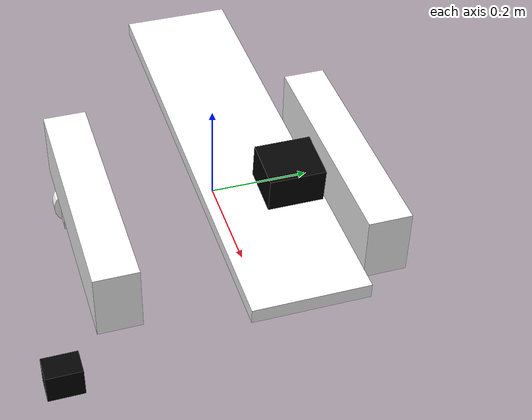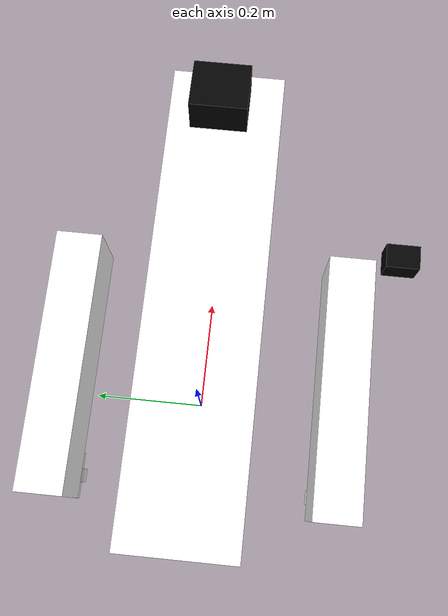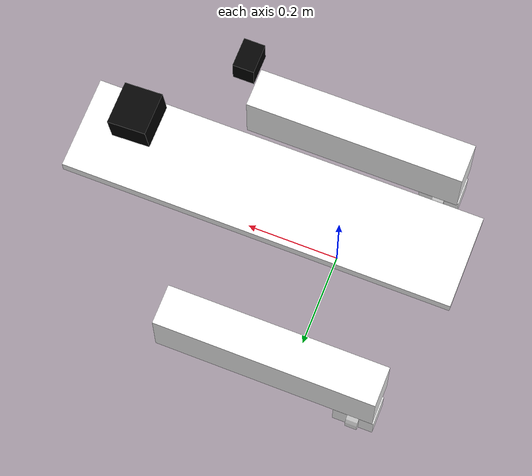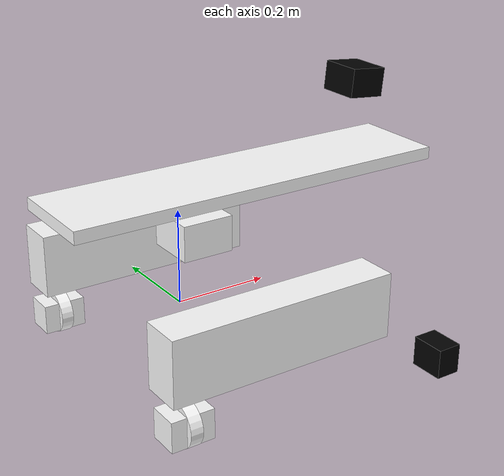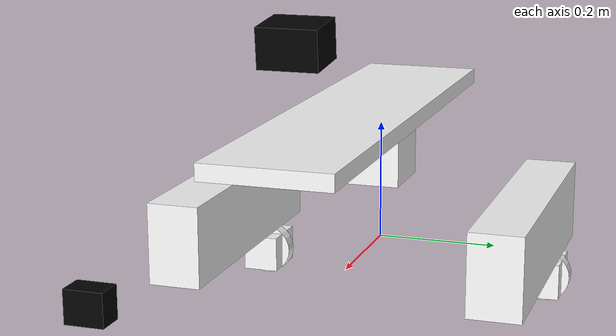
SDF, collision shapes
<?xml version="1.0"?>
<sdf version="1.9">
  <model name="asv_kki_2026">
    <!-- Pose-driven marine model. Keep it static in Gazebo physics so the
         hull cannot fall through the visual wave mesh; planar_pose_controller
         owns the ASV motion on the water surface. -->
    <static>true</static>
    <enable_wind>false</enable_wind>

    <link name="base_link">
      <gravity>false</gravity>
      <kinematic>true</kinematic>
      <pose>0 0 0 0 0 0</pose>
      <visual name="vrx_roboboat02_hull_visual">
        <geometry>
          <mesh>
            <uri>file:///home/ammar/Documents/asv_simulation/vrx/vrx_gz/models/roboboat02/meshes/roboboat02.dae</uri>
            <scale>0.60 0.60 0.60</scale>
          </mesh>
        </geometry>
        <material>
          <diffuse>1.0 1.0 1.0 1</diffuse>
          <specular>0.8 0.8 0.8 1</specular>
          <pbr>
            <metal>
              <albedo_map>file:///home/ammar/Documents/asv_simulation/vrx/vrx_gz/models/roboboat02/materials/textures/Boat02_Albedo.png</albedo_map>
              <normal_map>file:///home/ammar/Documents/asv_simulation/vrx/vrx_gz/models/roboboat02/materials/textures/Boat02_Normal.png</normal_map>
              <roughness_map>file:///home/ammar/Documents/asv_simulation/vrx/vrx_gz/models/roboboat02/materials/textures/Boat02_Roughness.png</roughness_map>
              <metalness_map>file:///home/ammar/Documents/asv_simulation/vrx/vrx_gz/models/roboboat02/materials/textures/Boat02_Metallic.png</metalness_map>
            </metal>
          </pbr>
          <double_sided>true</double_sided>
        </material>
      </visual>
      <visual name="vrx_drybox_visual">
        <pose>0.000 0.000 0.210 0 0 0</pose>
        <geometry>
          <mesh>
            <uri>file:///home/ammar/Documents/asv_simulation/vrx/vrx_gz/models/roboboat_cpubox/meshes/drybox.dae</uri>
            <scale>0.60 0.60 0.60</scale>
          </mesh>
        </geometry>
        <material>
          <diffuse>1.0 1.0 1.0 1</diffuse>
          <specular>0.6 0.6 0.6 1</specular>
          <pbr>
            <metal>
              <albedo_map>file:///home/ammar/Documents/asv_simulation/vrx/vrx_gz/models/roboboat_cpubox/materials/textures/DryBox_Albedo.png</albedo_map>
              <roughness_map>file:///home/ammar/Documents/asv_simulation/vrx/vrx_gz/models/roboboat_cpubox/materials/textures/DryBox_Roughness.png</roughness_map>
            </metal>
          </pbr>
        </material>
      </visual>
      <visual name="left_thruster_bracket_visual">
        <pose>-0.150 0.264 -0.042 0 0 0</pose>
        <geometry>
          <box>
            <size>0.035 0.032 0.120</size>
          </box>
        </geometry>
        <material>
          <ambient>0.015 0.015 0.015 1</ambient>
          <diffuse>0.015 0.015 0.015 1</diffuse>
        </material>
      </visual>
      <visual name="right_thruster_bracket_visual">
        <pose>-0.150 -0.264 -0.042 0 0 0</pose>
        <geometry>
          <box>
            <size>0.035 0.032 0.120</size>
          </box>
        </geometry>
        <material>
          <ambient>0.015 0.015 0.015 1</ambient>
          <diffuse>0.015 0.015 0.015 1</diffuse>
        </material>
      </visual>
      <visual name="left_thruster_servo_case_visual">
        <pose>-0.150 0.264 -0.024 0 0 0</pose>
        <geometry>
          <box>
            <size>0.078 0.058 0.038</size>
          </box>
        </geometry>
        <material>
          <ambient>0.18 0.18 0.17 1</ambient>
          <diffuse>0.18 0.18 0.17 1</diffuse>
          <specular>0.28 0.28 0.25 1</specular>
        </material>
      </visual>
      <visual name="left_thruster_servo_shaft_visual">
        <pose>-0.150 0.264 -0.057 0 0 0</pose>
        <geometry>
          <cylinder>
            <radius>0.010</radius>
            <length>0.090</length>
          </cylinder>
        </geometry>
        <material>
          <ambient>0.02 0.02 0.02 1</ambient>
          <diffuse>0.02 0.02 0.02 1</diffuse>
        </material>
      </visual>
      <visual name="right_thruster_servo_case_visual">
        <pose>-0.150 -0.264 -0.024 0 0 0</pose>
        <geometry>
          <box>
            <size>0.078 0.058 0.038</size>
          </box>
        </geometry>
        <material>
          <ambient>0.18 0.18 0.17 1</ambient>
          <diffuse>0.18 0.18 0.17 1</diffuse>
          <specular>0.28 0.28 0.25 1</specular>
        </material>
      </visual>
      <visual name="right_thruster_servo_shaft_visual">
        <pose>-0.150 -0.264 -0.057 0 0 0</pose>
        <geometry>
          <cylinder>
            <radius>0.010</radius>
            <length>0.090</length>
          </cylinder>
        </geometry>
        <material>
          <ambient>0.02 0.02 0.02 1</ambient>
          <diffuse>0.02 0.02 0.02 1</diffuse>
        </material>
      </visual>
      <visual name="lidar_mount_base_visual">
        <pose>0.036 0 0.300 0 0 0</pose>
        <geometry>
          <box>
            <size>0.165 0.120 0.022</size>
          </box>
        </geometry>
        <material>
          <ambient>0.02 0.02 0.02 1</ambient>
          <diffuse>0.02 0.02 0.02 1</diffuse>
        </material>
      </visual>
      <visual name="lidar_support_post_visual">
        <pose>0.036 0 0.405 0 0 0</pose>
        <geometry>
          <cylinder>
            <radius>0.012</radius>
            <length>0.190</length>
          </cylinder>
        </geometry>
        <material>
          <ambient>0.02 0.02 0.02 1</ambient>
          <diffuse>0.02 0.02 0.02 1</diffuse>
        </material>
      </visual>
      <visual name="sensor_mast_top_bar_visual">
        <pose>0.036 0 0.505 0 0 0</pose>
        <geometry>
          <box>
            <size>0.140 0.026 0.018</size>
          </box>
        </geometry>
        <material>
          <ambient>0.02 0.02 0.02 1</ambient>
          <diffuse>0.02 0.02 0.02 1</diffuse>
        </material>
      </visual>
      <collision name="left_hull_collision">
        <pose>0.048 0.260 0.040 0 0 0</pose>
        <geometry>
          <box>
            <size>0.484 0.087 0.136</size>
          </box>
        </geometry>
      </collision>
      <collision name="right_hull_collision">
        <pose>0.048 -0.260 0.040 0 0 0</pose>
        <geometry>
          <box>
            <size>0.484 0.087 0.136</size>
          </box>
        </geometry>
      </collision>
      <collision name="deck_contact_collision">
        <pose>0.147 0 0.240 0 0 0</pose>
        <geometry>
          <box>
            <size>0.831 0.199 0.026</size>
          </box>
        </geometry>
      </collision>
      <inertial>
        <pose>0.120 0 -0.190 0 0 0</pose>
        <mass>7.2</mass>
        <inertia>
          <ixx>0.155</ixx>
          <ixy>0</ixy>
          <ixz>0</ixz>
          <iyy>0.460</iyy>
          <iyz>0</iyz>
          <izz>0.560</izz>
        </inertia>
      </inertial>
      <!-- Detect contacts on the main hull/deck collisions. This reports
           collision events without disabling the pose-based marine controller. -->
      <sensor name="hull_contact_sensor" type="contact">
        <contact>
          <collision>left_hull_collision</collision>
          <collision>right_hull_collision</collision>
          <collision>deck_contact_collision</collision>
          <topic>/asv/collisions/hull</topic>
        </contact>
        <always_on>true</always_on>
        <update_rate>30</update_rate>
      </sensor>
    </link>

    <link name="left_thruster_servo_link">
      <gravity>false</gravity>
      <kinematic>false</kinematic>
      <pose relative_to="left_thruster_steering_joint">0 0 0 0 0 0</pose>
      <visual name="left_thruster_housing_visual">
        <geometry>
          <mesh>
            <uri>file:///home/ammar/Documents/asv_simulation/vrx/vrx_gz/models/roboboat01/meshes/housing.dae</uri>
            <scale>0.60 0.60 0.60</scale>
          </mesh>
        </geometry>
        <material>
          <diffuse>1.0 1.0 1.0 1</diffuse>
          <specular>0.65 0.65 0.65 1</specular>
          <pbr>
            <metal>
              <albedo_map>file:///home/ammar/Documents/asv_simulation/vrx/vrx_gz/models/roboboat01/materials/textures/Thruster_Albedo.png</albedo_map>
              <roughness_map>file:///home/ammar/Documents/asv_simulation/vrx/vrx_gz/models/roboboat01/materials/textures/Thruster_Roughness.png</roughness_map>
            </metal>
          </pbr>
        </material>
      </visual>
      <visual name="left_thruster_mount_visual">
        <geometry>
          <mesh>
            <uri>file:///home/ammar/Documents/asv_simulation/vrx/vrx_gz/models/roboboat01/meshes/mount.dae</uri>
            <scale>0.60 0.60 0.60</scale>
          </mesh>
        </geometry>
        <material>
          <diffuse>1.0 1.0 1.0 1</diffuse>
          <specular>0.65 0.65 0.65 1</specular>
          <pbr>
            <metal>
              <albedo_map>file:///home/ammar/Documents/asv_simulation/vrx/vrx_gz/models/roboboat01/materials/textures/Thruster_Albedo.png</albedo_map>
              <roughness_map>file:///home/ammar/Documents/asv_simulation/vrx/vrx_gz/models/roboboat01/materials/textures/Thruster_Roughness.png</roughness_map>
            </metal>
          </pbr>
        </material>
      </visual>
      <visual name="left_thruster_shaft_visual">
        <pose>0.033 0 0 0 0 0</pose>
        <geometry>
          <box>
            <size>0.095 0.018 0.018</size>
          </box>
        </geometry>
        <material>
          <ambient>0.015 0.015 0.015 1</ambient>
          <diffuse>0.015 0.015 0.015 1</diffuse>
        </material>
      </visual>
      <visual name="left_servo_horn_visual">
        <pose>0 0 0.055 0 0 0</pose>
        <geometry>
          <cylinder>
            <radius>0.028</radius>
            <length>0.012</length>
          </cylinder>
        </geometry>
        <material>
          <ambient>0.06 0.06 0.055 1</ambient>
          <diffuse>0.06 0.06 0.055 1</diffuse>
          <specular>0.22 0.22 0.20 1</specular>
        </material>
      </visual>
      <visual name="left_steering_yoke_visual">
        <pose>0.005 0 0.037 0 0 0</pose>
        <geometry>
          <box>
            <size>0.050 0.090 0.012</size>
          </box>
        </geometry>
        <material>
          <ambient>0.04 0.04 0.038 1</ambient>
          <diffuse>0.04 0.04 0.038 1</diffuse>
        </material>
      </visual>
      <collision name="left_thruster_servo_collision">
        <geometry><box><size>0.090 0.063 0.063</size></box></geometry>
      </collision>
      <inertial>
        <mass>0.20</mass>
        <inertia>
          <ixx>0.00028</ixx>
          <ixy>0</ixy>
          <ixz>0</ixz>
          <iyy>0.00034</iyy>
          <iyz>0</iyz>
          <izz>0.00034</izz>
        </inertia>
      </inertial>
      <sensor name="left_thruster_contact_sensor" type="contact">
        <contact>
          <collision>left_thruster_servo_collision</collision>
          <topic>/asv/collisions/left_thruster</topic>
        </contact>
        <always_on>true</always_on>
        <update_rate>30</update_rate>
      </sensor>
    </link>
    <joint name="left_thruster_steering_joint" type="revolute">
      <pose relative_to="base_link">-0.150 0.264 -0.090 0 0 0</pose>
      <parent>base_link</parent>
      <child>left_thruster_servo_link</child>
      <axis>
        <xyz>0 0 1</xyz>
        <limit>
          <lower>-0.785398</lower>
          <upper>0.785398</upper>
          <effort>12</effort>
          <velocity>2.0</velocity>
        </limit>
        <dynamics>
          <damping>0.20</damping>
          <friction>0.02</friction>
        </dynamics>
      </axis>
    </joint>

    <link name="right_thruster_servo_link">
      <gravity>false</gravity>
      <kinematic>false</kinematic>
      <pose relative_to="right_thruster_steering_joint">0 0 0 0 0 0</pose>
      <visual name="right_thruster_housing_visual">
        <geometry>
          <mesh>
            <uri>file:///home/ammar/Documents/asv_simulation/vrx/vrx_gz/models/roboboat01/meshes/housing.dae</uri>
            <scale>0.60 0.60 0.60</scale>
          </mesh>
        </geometry>
        <material>
          <diffuse>1.0 1.0 1.0 1</diffuse>
          <specular>0.65 0.65 0.65 1</specular>
          <pbr>
            <metal>
              <albedo_map>file:///home/ammar/Documents/asv_simulation/vrx/vrx_gz/models/roboboat01/materials/textures/Thruster_Albedo.png</albedo_map>
              <roughness_map>file:///home/ammar/Documents/asv_simulation/vrx/vrx_gz/models/roboboat01/materials/textures/Thruster_Roughness.png</roughness_map>
            </metal>
          </pbr>
        </material>
      </visual>
      <visual name="right_thruster_mount_visual">
        <geometry>
          <mesh>
            <uri>file:///home/ammar/Documents/asv_simulation/vrx/vrx_gz/models/roboboat01/meshes/mount.dae</uri>
            <scale>0.60 0.60 0.60</scale>
          </mesh>
        </geometry>
        <material>
          <diffuse>1.0 1.0 1.0 1</diffuse>
          <specular>0.65 0.65 0.65 1</specular>
          <pbr>
            <metal>
              <albedo_map>file:///home/ammar/Documents/asv_simulation/vrx/vrx_gz/models/roboboat01/materials/textures/Thruster_Albedo.png</albedo_map>
              <roughness_map>file:///home/ammar/Documents/asv_simulation/vrx/vrx_gz/models/roboboat01/materials/textures/Thruster_Roughness.png</roughness_map>
            </metal>
          </pbr>
        </material>
      </visual>
      <visual name="right_thruster_shaft_visual">
        <pose>0.033 0 0 0 0 0</pose>
        <geometry>
          <box>
            <size>0.095 0.018 0.018</size>
          </box>
        </geometry>
        <material>
          <ambient>0.015 0.015 0.015 1</ambient>
          <diffuse>0.015 0.015 0.015 1</diffuse>
        </material>
      </visual>
      <visual name="right_servo_horn_visual">
        <pose>0 0 0.055 0 0 0</pose>
        <geometry>
          <cylinder>
            <radius>0.028</radius>
            <length>0.012</length>
          </cylinder>
        </geometry>
        <material>
          <ambient>0.06 0.06 0.055 1</ambient>
          <diffuse>0.06 0.06 0.055 1</diffuse>
          <specular>0.22 0.22 0.20 1</specular>
        </material>
      </visual>
      <visual name="right_steering_yoke_visual">
        <pose>0.005 0 0.037 0 0 0</pose>
        <geometry>
          <box>
            <size>0.050 0.090 0.012</size>
          </box>
        </geometry>
        <material>
          <ambient>0.04 0.04 0.038 1</ambient>
          <diffuse>0.04 0.04 0.038 1</diffuse>
        </material>
      </visual>
      <collision name="right_thruster_servo_collision">
        <geometry><box><size>0.090 0.063 0.063</size></box></geometry>
      </collision>
      <inertial>
        <mass>0.20</mass>
        <inertia>
          <ixx>0.00028</ixx>
          <ixy>0</ixy>
          <ixz>0</ixz>
          <iyy>0.00034</iyy>
          <iyz>0</iyz>
          <izz>0.00034</izz>
        </inertia>
      </inertial>
      <sensor name="right_thruster_contact_sensor" type="contact">
        <contact>
          <collision>right_thruster_servo_collision</collision>
          <topic>/asv/collisions/right_thruster</topic>
        </contact>
        <always_on>true</always_on>
        <update_rate>30</update_rate>
      </sensor>
    </link>
    <joint name="right_thruster_steering_joint" type="revolute">
      <pose relative_to="base_link">-0.150 -0.264 -0.090 0 0 0</pose>
      <parent>base_link</parent>
      <child>right_thruster_servo_link</child>
      <axis>
        <xyz>0 0 1</xyz>
        <limit>
          <lower>-0.785398</lower>
          <upper>0.785398</upper>
          <effort>12</effort>
          <velocity>2.0</velocity>
        </limit>
        <dynamics>
          <damping>0.20</damping>
          <friction>0.02</friction>
        </dynamics>
      </axis>
    </joint>

    <link name="left_propeller_link">
      <gravity>false</gravity>
      <kinematic>false</kinematic>
      <pose relative_to="left_propeller_joint">0 0 0 0 0 0</pose>
      <visual name="left_propeller_mesh_visual">
        <pose>0 0 0 0 0 0</pose>
        <geometry>
          <mesh>
            <uri>file:///home/ammar/Documents/asv_simulation/vrx/vrx_gz/models/roboboat01/meshes/prop.dae</uri>
            <scale>0.60 0.60 0.60</scale>
          </mesh>
        </geometry>
        <material>
          <diffuse>1.0 1.0 1.0 1</diffuse>
          <specular>0.65 0.65 0.65 1</specular>
          <pbr>
            <metal>
              <albedo_map>file:///home/ammar/Documents/asv_simulation/vrx/vrx_gz/models/roboboat01/materials/textures/Thruster_Albedo.png</albedo_map>
              <roughness_map>file:///home/ammar/Documents/asv_simulation/vrx/vrx_gz/models/roboboat01/materials/textures/Thruster_Roughness.png</roughness_map>
            </metal>
          </pbr>
        </material>
      </visual>
      <collision name="left_propeller_collision">
        <pose>0 0 0 0 1.570796 0</pose>
        <geometry><cylinder><radius>0.045</radius><length>0.026</length></cylinder></geometry>
      </collision>
      <inertial>
        <mass>0.05</mass>
        <inertia>
          <ixx>0.000035</ixx>
          <ixy>0</ixy>
          <ixz>0</ixz>
          <iyy>0.000035</iyy>
          <iyz>0</iyz>
          <izz>0.000060</izz>
        </inertia>
      </inertial>
      <sensor name="left_propeller_contact_sensor" type="contact">
        <contact>
          <collision>left_propeller_collision</collision>
          <topic>/asv/collisions/left_propeller</topic>
        </contact>
        <always_on>true</always_on>
        <update_rate>30</update_rate>
      </sensor>
    </link>
    <joint name="left_propeller_joint" type="revolute">
      <pose relative_to="left_thruster_servo_link">0 0 0 0 0 0</pose>
      <parent>left_thruster_servo_link</parent>
      <child>left_propeller_link</child>
      <axis>
        <xyz>1 0 0</xyz>
        <limit>
          <effort>40.0</effort>
          <velocity>300.0</velocity>
        </limit>
        <dynamics>
          <damping>0.05</damping>
          <friction>0.01</friction>
        </dynamics>
      </axis>
    </joint>

    <link name="right_propeller_link">
      <gravity>false</gravity>
      <kinematic>false</kinematic>
      <pose relative_to="right_propeller_joint">0 0 0 0 0 0</pose>
      <visual name="right_propeller_mesh_visual">
        <pose>0 0 0 0 0 0</pose>
        <geometry>
          <mesh>
            <uri>file:///home/ammar/Documents/asv_simulation/vrx/vrx_gz/models/roboboat01/meshes/prop.dae</uri>
            <scale>0.60 0.60 0.60</scale>
          </mesh>
        </geometry>
        <material>
          <diffuse>1.0 1.0 1.0 1</diffuse>
          <specular>0.65 0.65 0.65 1</specular>
          <pbr>
            <metal>
              <albedo_map>file:///home/ammar/Documents/asv_simulation/vrx/vrx_gz/models/roboboat01/materials/textures/Thruster_Albedo.png</albedo_map>
              <roughness_map>file:///home/ammar/Documents/asv_simulation/vrx/vrx_gz/models/roboboat01/materials/textures/Thruster_Roughness.png</roughness_map>
            </metal>
          </pbr>
        </material>
      </visual>
      <collision name="right_propeller_collision">
        <pose>0 0 0 0 1.570796 0</pose>
        <geometry><cylinder><radius>0.045</radius><length>0.026</length></cylinder></geometry>
      </collision>
      <inertial>
        <mass>0.05</mass>
        <inertia>
          <ixx>0.000035</ixx>
          <ixy>0</ixy>
          <ixz>0</ixz>
          <iyy>0.000035</iyy>
          <iyz>0</iyz>
          <izz>0.000060</izz>
        </inertia>
      </inertial>
      <sensor name="right_propeller_contact_sensor" type="contact">
        <contact>
          <collision>right_propeller_collision</collision>
          <topic>/asv/collisions/right_propeller</topic>
        </contact>
        <always_on>true</always_on>
        <update_rate>30</update_rate>
      </sensor>
    </link>
    <joint name="right_propeller_joint" type="revolute">
      <pose relative_to="right_thruster_servo_link">0 0 0 0 0 0</pose>
      <parent>right_thruster_servo_link</parent>
      <child>right_propeller_link</child>
      <axis>
        <xyz>1 0 0</xyz>
        <limit>
          <effort>40.0</effort>
          <velocity>300.0</velocity>
        </limit>
        <dynamics>
          <damping>0.05</damping>
          <friction>0.01</friction>
        </dynamics>
      </axis>
    </joint>

    <link name="imu_link">
      <gravity>false</gravity>
      <kinematic>false</kinematic>
      <pose relative_to="base_link">0.000 0 0.220 0 0 0</pose>
      <inertial>
        <mass>0.02</mass>
        <inertia>
          <ixx>0.000010</ixx>
          <ixy>0</ixy>
          <ixz>0</ixz>
          <iyy>0.000010</iyy>
          <iyz>0</iyz>
          <izz>0.000010</izz>
        </inertia>
      </inertial>
      <sensor name="imu_sensor" type="imu">
        <topic>/asv/imu/data</topic>
        <always_on>true</always_on>
        <update_rate>100</update_rate>
      </sensor>
    </link>
    <joint name="imu_joint" type="fixed">
      <parent>base_link</parent>
      <child>imu_link</child>
    </joint>

    <link name="gps_link">
      <gravity>false</gravity>
      <kinematic>false</kinematic>
      <pose relative_to="base_link">0.020 0 0.530 0 0 0</pose>
      <inertial>
        <mass>0.05</mass>
        <inertia>
          <ixx>0.000030</ixx>
          <ixy>0</ixy>
          <ixz>0</ixz>
          <iyy>0.000030</iyy>
          <iyz>0</iyz>
          <izz>0.000030</izz>
        </inertia>
      </inertial>
      <sensor name="gps_sensor" type="navsat">
        <topic>/asv/gps/fix</topic>
        <always_on>true</always_on>
        <update_rate>10</update_rate>
        <navsat>
          <position_sensing>
            <horizontal>
              <noise type="gaussian">
                <mean>0</mean>
                <stddev>0.05</stddev>
              </noise>
            </horizontal>
            <vertical>
              <noise type="gaussian">
                <mean>0</mean>
                <stddev>0.10</stddev>
              </noise>
            </vertical>
          </position_sensing>
        </navsat>
      </sensor>
    </link>
    <joint name="gps_joint" type="fixed">
      <parent>base_link</parent>
      <child>gps_link</child>
    </joint>

    <link name="lidar_link">
      <gravity>false</gravity>
      <kinematic>false</kinematic>
      <pose relative_to="base_link">0.036 0 0.150 0 0 0</pose>
      <inertial>
        <mass>0.12</mass>
        <inertia>
          <ixx>0.000150</ixx>
          <ixy>0</ixy>
          <ixz>0</ixz>
          <iyy>0.000150</iyy>
          <iyz>0</iyz>
          <izz>0.000180</izz>
        </inertia>
      </inertial>
      <visual name="vrx_3d_lidar_visual">
        <pose>0 0 -0.035 0 0 0</pose>
        <geometry>
          <mesh>
            <uri>file:///home/ammar/Documents/asv_simulation/asv_kki_2026_ws/src/asv_description/models/asv_kki_2026/meshes/vrx_3d_lidar/3d_lidar.dae</uri>
            <scale>0.60 0.60 0.60</scale>
          </mesh>
        </geometry>
        <material>
          <diffuse>1.0 1.0 1.0 1</diffuse>
          <specular>0.6 0.6 0.6 1</specular>
          <pbr>
            <metal>
              <albedo_map>file:///home/ammar/Documents/asv_simulation/asv_kki_2026_ws/src/asv_description/models/asv_kki_2026/meshes/vrx_3d_lidar/3d_Lidar_Albedo.png</albedo_map>
              <normal_map>file:///home/ammar/Documents/asv_simulation/asv_kki_2026_ws/src/asv_description/models/asv_kki_2026/meshes/vrx_3d_lidar/3d_Lidar_Normal.png</normal_map>
              <roughness_map>file:///home/ammar/Documents/asv_simulation/asv_kki_2026_ws/src/asv_description/models/asv_kki_2026/meshes/vrx_3d_lidar/3d_Lidar_Roughness.png</roughness_map>
              <metalness_map>file:///home/ammar/Documents/asv_simulation/asv_kki_2026_ws/src/asv_description/models/asv_kki_2026/meshes/vrx_3d_lidar/3d_Lidar_Metalness.png</metalness_map>
            </metal>
          </pbr>
        </material>
      </visual>
      <collision name="lidar_collision">
        <geometry>
          <box>
            <size>0.110 0.110 0.075</size>
          </box>
        </geometry>
      </collision>
      <sensor name="lidar_contact_sensor" type="contact">
        <contact>
          <collision>lidar_collision</collision>
          <topic>/asv/collisions/lidar</topic>
        </contact>
        <always_on>true</always_on>
        <update_rate>30</update_rate>
      </sensor>
      <sensor name="lidar_sensor" type="gpu_lidar">
        <topic>/asv/lidar/scan</topic>
        <always_on>true</always_on>
        <visualize>true</visualize>
        <update_rate>15</update_rate>
        <lidar>
          <scan>
            <horizontal>
              <samples>720</samples>
              <resolution>1</resolution>
              <min_angle>-3.14159</min_angle>
              <max_angle>3.14159</max_angle>
            </horizontal>
            <vertical>
              <samples>3</samples>
              <resolution>1</resolution>
              <min_angle>-0.035</min_angle>
              <max_angle>0.035</max_angle>
            </vertical>
          </scan>
          <range>
            <min>0.45</min>
            <max>6.0</max>
            <resolution>0.02</resolution>
          </range>
          <noise>
            <type>gaussian</type>
            <mean>0.0</mean>
            <stddev>0.015</stddev>
          </noise>
        </lidar>
      </sensor>
    </link>
    <joint name="lidar_joint" type="fixed">
      <parent>base_link</parent>
      <child>lidar_link</child>
    </joint>

    <link name="front_camera_link">
      <gravity>false</gravity>
      <kinematic>false</kinematic>
      <pose relative_to="base_link">0.430 0 0.400 0 0.100 0</pose>
      <inertial>
        <mass>0.08</mass>
        <inertia>
          <ixx>0.000060</ixx>
          <ixy>0</ixy>
          <ixz>0</ixz>
          <iyy>0.000050</iyy>
          <iyz>0</iyz>
          <izz>0.000080</izz>
        </inertia>
      </inertial>
      <visual name="front_camera_visual">
        <pose>0 0 0 0 0 0</pose>
        <geometry>
          <box>
            <size>0.064 0.085 0.052</size>
          </box>
        </geometry>
        <material>
          <ambient>0.01 0.01 0.01 1</ambient>
          <diffuse>0.01 0.01 0.01 1</diffuse>
        </material>
      </visual>
      <visual name="front_camera_lens_visual">
        <pose>0.040 0 0 0 1.570796 0</pose>
        <geometry>
          <cylinder>
            <radius>0.020</radius>
            <length>0.018</length>
          </cylinder>
        </geometry>
        <material>
          <ambient>0.04 0.05 0.06 1</ambient>
          <diffuse>0.04 0.05 0.06 1</diffuse>
          <specular>0.45 0.55 0.65 1</specular>
        </material>
      </visual>
      <collision name="front_camera_collision">
        <geometry><box><size>0.080 0.090 0.060</size></box></geometry>
      </collision>
      <sensor name="front_camera_contact_sensor" type="contact">
        <contact>
          <collision>front_camera_collision</collision>
          <topic>/asv/collisions/front_camera</topic>
        </contact>
        <always_on>true</always_on>
        <update_rate>30</update_rate>
      </sensor>
      <sensor name="front_camera_sensor" type="camera">
        <topic>/asv/camera/front/image</topic>
        <always_on>true</always_on>
        <update_rate>20</update_rate>
        <visualize>true</visualize>
        <camera>
          <horizontal_fov>1.3962634</horizontal_fov>
          <image>
            <width>1280</width>
            <height>720</height>
            <format>R8G8B8</format>
          </image>
          <clip>
            <near>0.05</near>
            <far>80.0</far>
          </clip>
        </camera>
      </sensor>
    </link>
    <joint name="front_camera_joint" type="fixed">
      <parent>base_link</parent>
      <child>front_camera_link</child>
    </joint>

    <link name="down_camera_link">
      <gravity>false</gravity>
      <kinematic>false</kinematic>
      <pose relative_to="base_link">0.350 -0.380 -0.050 0 1.570796 0</pose>
      <inertial>
        <mass>0.05</mass>
        <inertia>
          <ixx>0.000025</ixx>
          <ixy>0</ixy>
          <ixz>0</ixz>
          <iyy>0.000020</iyy>
          <iyz>0</iyz>
          <izz>0.000030</izz>
        </inertia>
      </inertial>
      <visual name="down_camera_visual">
        <pose>0 0 0 0 0 0</pose>
        <geometry>
          <box>
            <size>0.040 0.060 0.040</size>
          </box>
        </geometry>
        <material>
          <ambient>0.01 0.01 0.01 1</ambient>
          <diffuse>0.01 0.01 0.01 1</diffuse>
        </material>
      </visual>
      <visual name="down_camera_lens_visual">
        <pose>0.020 0 0 0 0 0</pose>
        <geometry>
          <cylinder>
            <radius>0.016</radius>
            <length>0.014</length>
          </cylinder>
        </geometry>
        <material>
          <ambient>0.04 0.05 0.06 1</ambient>
          <diffuse>0.04 0.05 0.06 1</diffuse>
          <specular>0.45 0.55 0.65 1</specular>
        </material>
      </visual>
      <collision name="down_camera_collision">
        <geometry><box><size>0.060 0.070 0.050</size></box></geometry>
      </collision>
      <sensor name="down_camera_contact_sensor" type="contact">
        <contact>
          <collision>down_camera_collision</collision>
          <topic>/asv/collisions/down_camera</topic>
        </contact>
        <always_on>true</always_on>
        <update_rate>30</update_rate>
      </sensor>
      <sensor name="down_camera_sensor" type="camera">
        <topic>/asv/camera/down/image</topic>
        <always_on>true</always_on>
        <update_rate>10</update_rate>
        <camera>
          <horizontal_fov>1.85</horizontal_fov>
          <image>
            <width>640</width>
            <height>480</height>
            <format>R8G8B8</format>
          </image>
          <clip>
            <near>0.05</near>
            <far>10.0</far>
          </clip>
        </camera>
      </sensor>
    </link>
    <joint name="down_camera_joint" type="fixed">
      <parent>base_link</parent>
      <child>down_camera_link</child>
    </joint>

    <plugin filename="gz-sim-joint-state-publisher-system"
            name="gz::sim::systems::JointStatePublisher"/>

    <plugin filename="gz-sim-odometry-publisher-system"
            name="gz::sim::systems::OdometryPublisher">
      <odom_frame>odom</odom_frame>
      <robot_base_frame>base_link</robot_base_frame>
      <odom_publish_frequency>50</odom_publish_frequency>
      <odom_topic>/asv/odom</odom_topic>
      <dimensions>3</dimensions>
    </plugin>

    <plugin filename="gz-sim-pose-publisher-system"
            name="gz::sim::systems::PosePublisher">
      <publish_link_pose>true</publish_link_pose>
      <use_pose_vector_msg>true</use_pose_vector_msg>
      <static_publisher>true</static_publisher>
      <static_update_frequency>1</static_update_frequency>
    </plugin>

    <plugin filename="gz-sim-joint-controller-system"
            name="gz::sim::systems::JointController">
      <joint_name>left_propeller_joint</joint_name>
      <initial_velocity>0.0</initial_velocity>
      <p_gain>0.20</p_gain>
    </plugin>

    <plugin filename="gz-sim-joint-controller-system"
            name="gz::sim::systems::JointController">
      <joint_name>right_propeller_joint</joint_name>
      <initial_velocity>0.0</initial_velocity>
      <p_gain>0.20</p_gain>
    </plugin>

    <plugin filename="gz-sim-joint-position-controller-system"
            name="gz::sim::systems::JointPositionController">
      <joint_name>left_thruster_steering_joint</joint_name>
      <topic>/asv/thrusters/left_steering/cmd_pos</topic>
      <p_gain>8.0</p_gain>
      <i_gain>0.0</i_gain>
      <d_gain>0.8</d_gain>
      <cmd_max>20.0</cmd_max>
      <cmd_min>-20.0</cmd_min>
    </plugin>

    <plugin filename="gz-sim-joint-position-controller-system"
            name="gz::sim::systems::JointPositionController">
      <joint_name>right_thruster_steering_joint</joint_name>
      <topic>/asv/thrusters/right_steering/cmd_pos</topic>
      <p_gain>8.0</p_gain>
      <i_gain>0.0</i_gain>
      <d_gain>0.8</d_gain>
      <cmd_max>20.0</cmd_max>
      <cmd_min>-20.0</cmd_min>
    </plugin>

  </model>
</sdf>
